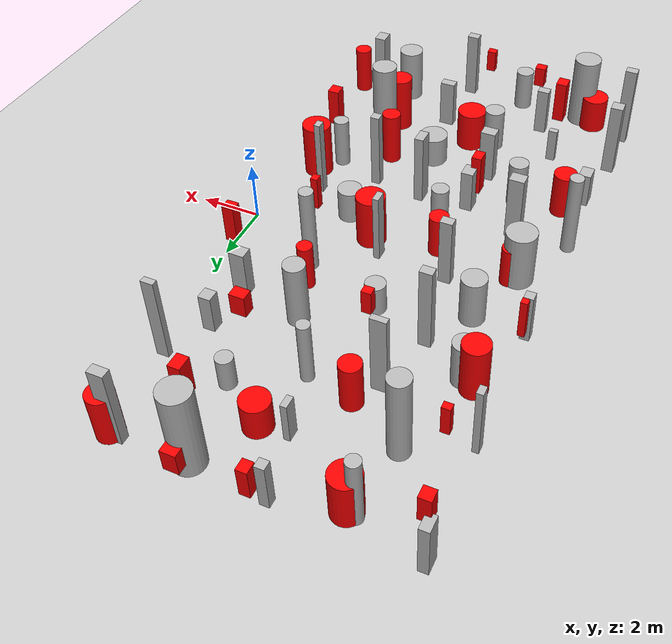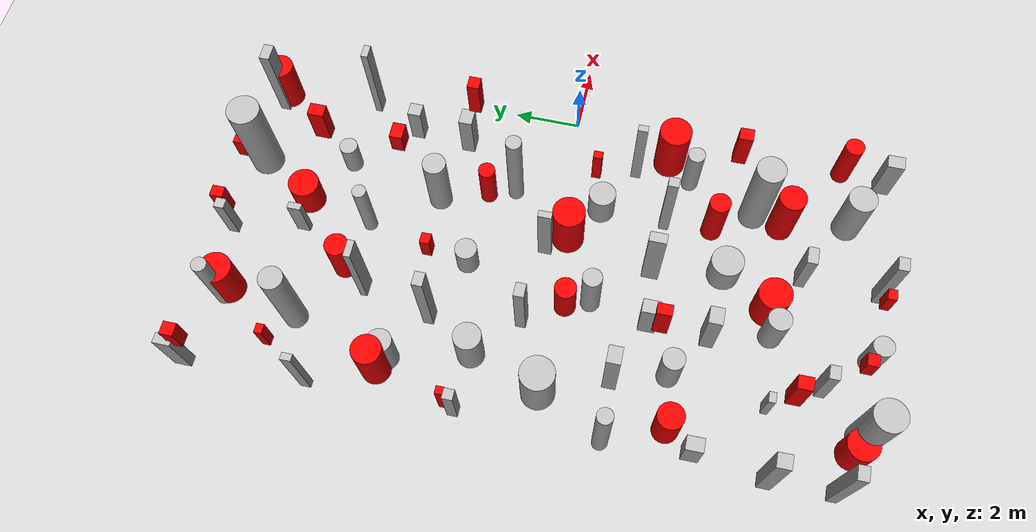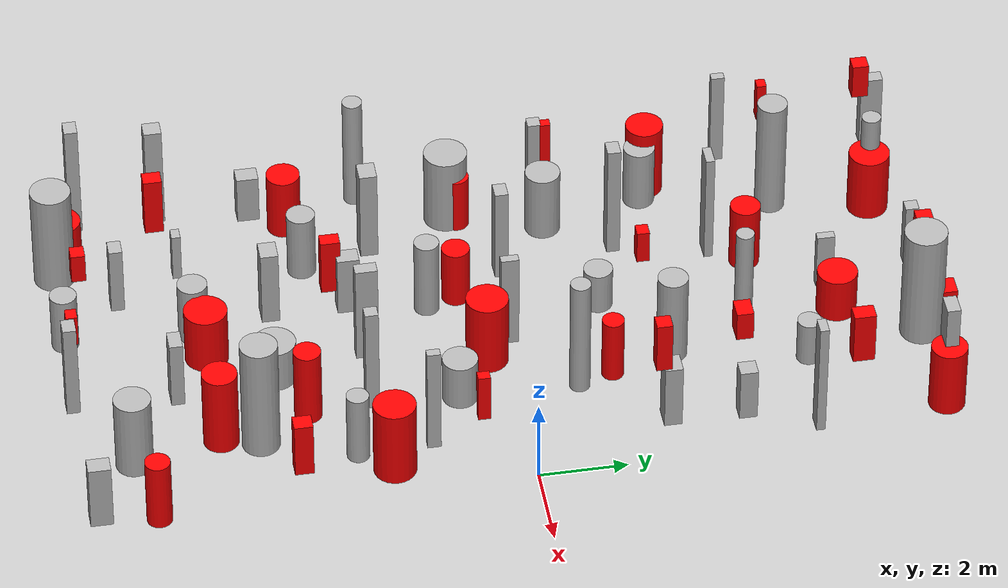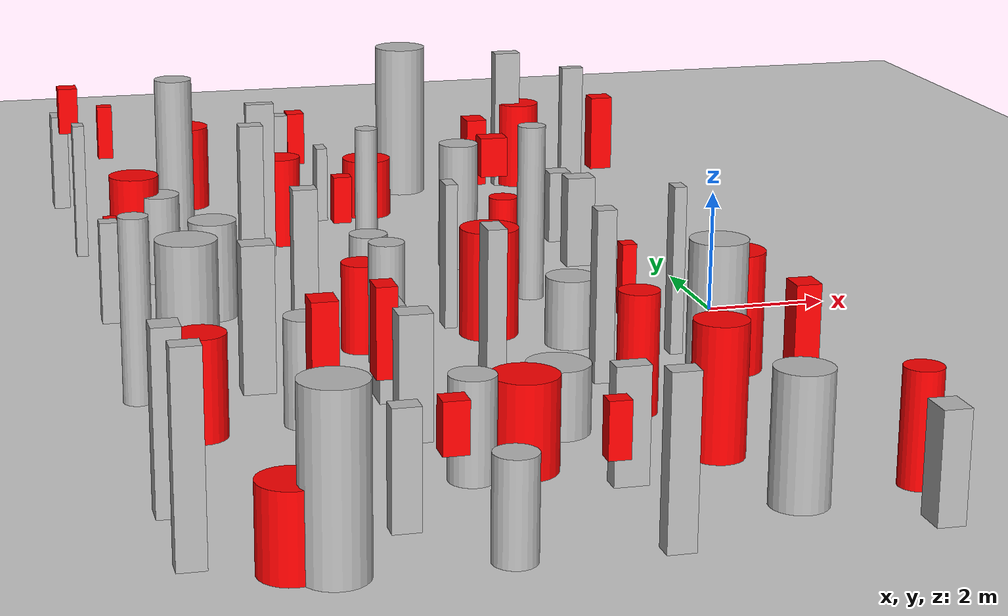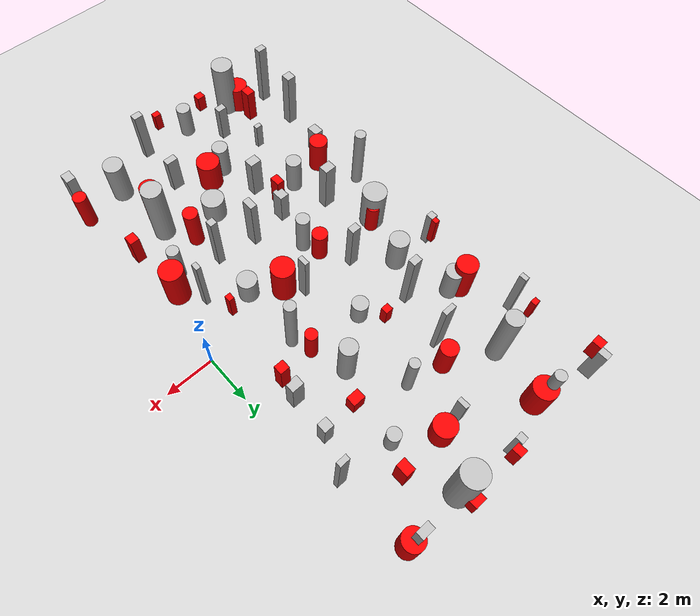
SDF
<sdf version="1.7">
 <world name="default">
  <model name="ground_plane">
   <static>1</static>
   <link name="link">
    <collision name="collision">
     <geometry><plane><normal>0 0 1</normal><size>100 100</size></plane></geometry>
     <surface>
      <contact><collide_bitmask>65535</collide_bitmask></contact>
      <friction><ode><mu>100</mu><mu2>50</mu2></ode></friction>
     </surface>
    </collision>
    <visual name="visual">
     <cast_shadows>0</cast_shadows>
     <geometry><plane><normal>0 0 1</normal><size>100 100</size></plane></geometry>
     <material>
      <script><uri>file://media/materials/scripts/gazebo.material</uri><name>Gazebo/Grey</name></script>
     </material>
    </visual>
   </link>
  </model>
  <model name="cylinder_3_0.9_0.9_2.6">
   <static>true</static>
   <pose>-8.257414005969185 -9.595632051193485 1.2781567509498504 0 0 0</pose>
   <link name="link">
    <visual name="visual">
     <geometry>
      <cylinder><radius>0.46100364447404574</radius><length>2.5563135018997007</length></cylinder>
     </geometry>
    </visual>
    <collision name="collision">
     <geometry>
      <cylinder><radius>0.46100364447404574</radius><length>2.5563135018997007</length></cylinder>
     </geometry>
     <collision><collide_bitmask>0x1</collide_bitmask><collide_with>0x2</collide_with></collision>
    </collision>
   </link>
  </model>
  <model name="cylinder_6_0.4_0.4_2.1">
   <static>true</static>
   <pose>-4.70888775790746 5.484673788684333 1.0684339488686485 0 0 0</pose>
   <link name="link">
    <visual name="visual">
     <geometry>
      <cylinder><radius>0.20563694013090655</radius><length>2.136867897737297</length></cylinder>
     </geometry>
    </visual>
   </link>
  </model>
  <model name="cylinder_8_0.8_0.8_1.1">
   <static>true</static>
   <pose>-2.80984198852428 -1.259360924013171 0.5602254716292698 0 0 0</pose>
   <link name="link">
    <visual name="visual">
     <geometry>
      <cylinder><radius>0.4000300146337003</radius><length>1.1204509432585397</length></cylinder>
     </geometry>
    </visual>
   </link>
  </model>
  <model name="cylinder_9_0.5_0.5_3.0">
   <static>true</static>
   <pose>-2.725784581147548 1.4039354083575937 1.4883738380592262 0 0 0</pose>
   <link name="link">
    <visual name="visual">
     <geometry>
      <cylinder><radius>0.23061344322440844</radius><length>2.9767476761184524</length></cylinder>
     </geometry>
    </visual>
   </link>
  </model>
  <model name="cylinder_10_0.7_0.7_1.5">
   <static>true</static>
   <pose>-5.822464878103306 -6.773809642300074 0.7532916025397821 0 0 0</pose>
   <link name="link">
    <visual name="visual">
     <geometry>
      <cylinder><radius>0.3398932318568919</radius><length>1.5065832050795642</length></cylinder>
     </geometry>
    </visual>
   </link>
  </model>
  <model name="cylinder_11_0.7_0.7_3.0">
   <static>true</static>
   <pose>-8.057974484138775 6.758898149976076 1.4764594650133958 0 0 0</pose>
   <link name="link">
    <visual name="visual">
     <geometry>
      <cylinder><radius>0.3405953604943105</radius><length>2.9529189300267915</length></cylinder>
     </geometry>
    </visual>
   </link>
  </model>
  <model name="cylinder_13_0.6_0.6_1.6">
   <static>true</static>
   <pose>-7.596068775736622 -4.077196049557101 0.817983179393976 0 0 0</pose>
   <link name="link">
    <visual name="visual">
     <geometry><cylinder><radius>0.324278898354401</radius><length>1.635966358787952</length></cylinder></geometry>
    </visual>
   </link>
  </model>
  <model name="cylinder_14_0.7_0.7_1.5">
   <static>true</static>
   <pose>-8.717050073024312 3.849442387400398 0.7653894909394454 0 0 0</pose>
   <link name="link">
    <visual name="visual">
     <geometry>
      <cylinder><radius>0.3569744160400099</radius><length>1.5307789818788908</length></cylinder>
     </geometry>
    </visual>
   </link>
  </model>
  <model name="cylinder_15_0.8_0.8_1.6">
   <static>true</static>
   <pose>-8.121189784831166 1.5189299111235854 0.8185689524513237 0 0 0</pose>
   <link name="link">
    <visual name="visual">
     <geometry>
      <cylinder><radius>0.4002231139891045</radius><length>1.6371379049026473</length></cylinder>
     </geometry>
    </visual>
   </link>
  </model>
  <model name="cylinder_22_0.8_0.8_1.9">
   <static>true</static>
   <pose>-1.8563340554800067 -8.61666009089724 0.9535426826780689 0 0 0</pose>
   <link name="link">
    <visual name="visual">
     <geometry>
      <cylinder><radius>0.4166166798411044</radius><length>1.9070853653561377</length></cylinder>
     </geometry>
    </visual>
   </link>
  </model>
  <model name="cylinder_24_0.6_0.6_1.4">
   <static>true</static>
   <pose>-6.000069502071998 -9.62956411078772 0.7239246880603801 0 0 0</pose>
   <link name="link">
    <visual name="visual">
     <geometry>
      <cylinder><radius>0.30360550420907084</radius><length>1.4478493761207603</length></cylinder>
     </geometry>
    </visual>
   </link>
  </model>
  <model name="cylinder_26_0.8_0.8_2.9">
   <static>true</static>
   <pose>-2.035578755678163 -5.803125020497557 1.4443723899839336 0 0 0</pose>
   <link name="link">
    <visual name="visual">
     <geometry>
      <cylinder><radius>0.4218652385147863</radius><length>2.888744779967867</length></cylinder>
     </geometry>
    </visual>
   </link>
  </model>
  <model name="cylinder_27_0.5_0.5_1.8">
   <static>true</static>
   <pose>-1.3116674888375854 -3.764082360117948 0.8777518392924809 0 0 0</pose>
   <link name="link">
    <visual name="visual">
     <geometry>
      <cylinder><radius>0.25388110326789043</radius><length>1.7555036785849618</length></cylinder>
     </geometry>
    </visual>
   </link>
  </model>
  <model name="cylinder_30_0.6_0.6_1.9">
   <static>true</static>
   <pose>-5.850598491177812 -1.5062906249698749 0.9635754243648107 0 0 0</pose>
   <link name="link">
    <visual name="visual">
     <geometry>
      <cylinder><radius>0.2832886118884196</radius><length>1.9271508487296214</length></cylinder>
     </geometry>
    </visual>
   </link>
  </model>
  <model name="cylinder_31_1.0_1.0_1.0">
   <static>true</static>
   <pose>-4.157049464149023 -5.183424401691063 0.5164296295914742 0 0 0</pose>
   <link name="link">
    <visual name="visual">
     <geometry>
      <cylinder><radius>0.47885879503765716</radius><length>1.0328592591829484</length></cylinder>
     </geometry>
    </visual>
   </link>
  </model>
  <model name="cylinder_32_1.0_1.0_2.9">
   <static>true</static>
   <pose>-3.236820963263087 9.231403090829971 1.4493188224156814 0 0 0</pose>
   <link name="link">
    <visual name="visual">
     <geometry>
      <cylinder><radius>0.4824133114119496</radius><length>2.898637644831363</length></cylinder>
     </geometry>
    </visual>
   </link>
  </model>
  <model name="cylinder_39_0.7_0.7_1.0">
   <static>true</static>
   <pose>-5.345117414418863 2.2892941295374865 0.5156060644468282 0 0 0</pose>
   <link name="link">
    <visual name="visual">
     <geometry>
      <cylinder><radius>0.3286387167494713</radius><length>1.0312121288936564</length></cylinder>
     </geometry>
    </visual>
   </link>
  </model>
  <model name="cylinder_40_0.5_0.5_1.1">
   <static>true</static>
   <pose>-2.789088790282155 6.573138291114756 0.5460073108872969 0 0 0</pose>
   <link name="link">
    <visual name="visual">
     <geometry>
      <cylinder><radius>0.26978809784892965</radius><length>1.0920146217745939</length></cylinder>
     </geometry>
    </visual>
   </link>
  </model>
  <model name="cylinder_41_0.4_0.4_2.4">
   <static>true</static>
   <pose>-7.881876902355356 9.01905222110788 1.1897682650777504 0 0 0</pose>
   <link name="link">
    <visual name="visual">
     <geometry>
      <cylinder><radius>0.2175069076941766</radius><length>2.3795365301555007</length></cylinder>
     </geometry>
    </visual>
   </link>
  </model>
  <model name="cylinder_44_0.5_0.5_2.8">
   <static>true</static>
   <pose>-9.842317929831193 -2.54641860358009 1.422111461767193 0 0 0</pose>
   <link name="link">
    <visual name="visual">
     <geometry>
      <cylinder><radius>0.22684836350987003</radius><length>2.844222923534386</length></cylinder>
     </geometry>
    </visual>
   </link>
  </model>
  <model name="cylinder_45_0.7_0.7_2.2">
   <static>true</static>
   <pose>-3.440239981838406 3.606973320300032 1.107249374011541 0 0 0</pose>
   <link name="link">
    <visual name="visual">
     <geometry>
      <cylinder><radius>0.3432939508629248</radius><length>2.214498748023082</length></cylinder>
     </geometry>
    </visual>
   </link>
  </model>
  <model name="cylinder_47_1.0_1.0_1.9">
   <static>true</static>
   <pose>-8.829301555288824 -0.5875819216385416 0.9570587613313674 0 0 0</pose>
   <link name="link">
    <visual name="visual">
     <geometry>
      <cylinder><radius>0.4939886979026928</radius><length>1.9141175226627347</length></cylinder>
     </geometry>
    </visual>
   </link>
  </model>
  <model name="box_1_0.3_0.2_1.2">
   <static>true</static>
   <pose>-7.951724830951672 -6.87233302264074 0.5753590690833403 0 0 0</pose>
   <link name="link">
    <visual name="visual"><geometry><box><size>0.3 0.2 1.2</size></box></geometry></visual>
   </link>
  </model>
  <model name="box_2_0.3_0.3_1.6">
   <static>true</static>
   <pose>-5.6467431308452305 9.476373936919668 0.7908409066567426 0 0 0</pose>
   <link name="link">
    <visual name="visual"><geometry><box><size>0.3 0.3 1.6</size></box></geometry></visual>
   </link>
  </model>
  <model name="box_4_0.2_0.4_2.4">
   <static>true</static>
   <pose>-4.467005395816209 0.1268583864760835 1.206410577667011 0 0 0</pose>
   <link name="link">
    <visual name="visual"><geometry><box><size>0.2 0.4 2.4</size></box></geometry></visual>
   </link>
  </model>
  <model name="box_7_0.4_0.4_2.6">
   <static>true</static>
   <pose>-9.96810858791411 -7.090997186022681 1.3051274852078378 0 0 0</pose>
   <link name="link">
    <visual name="visual"><geometry><box><size>0.4 0.4 2.6</size></box></geometry></visual>
   </link>
  </model>
  <model name="box_9_0.5_0.3_2.7">
   <static>true</static>
   <pose>-1.042438141605377 9.32442270248329 1.3264304053149787 0 0 0</pose>
   <link name="link">
    <visual name="visual"><geometry><box><size>0.5 0.3 2.7</size></box></geometry></visual>
   </link>
  </model>
  <model name="box_10_0.5_0.4_1.6">
   <static>true</static>
   <pose>-1.3480671386427048 3.1960805878154357 0.8062690951677486 0 0 0</pose>
   <link name="link">
    <visual name="visual"><geometry><box><size>0.5 0.4 1.6</size></box></geometry></visual>
   </link>
  </model>
  <model name="box_11_0.4_0.2_2.9">
   <static>true</static>
   <pose>-0.5704056656544019 6.350175977935912 1.4714355749376176 0 0 0</pose>
   <link name="link">
    <visual name="visual"><geometry><box><size>0.4 0.2 2.9</size></box></geometry></visual>
   </link>
  </model>
  <model name="box_13_0.2_0.4_1.4">
   <static>true</static>
   <pose>-5.2028403371286895 7.4259432440410045 0.6808393999158191 0 0 0</pose>
   <link name="link">
    <visual name="visual"><geometry><box><size>0.2 0.4 1.4</size></box></geometry></visual>
   </link>
  </model>
  <model name="box_14_0.5_0.2_2.8">
   <static>true</static>
   <pose>-6.743019079659223 5.038120720135398 1.3906873919138785 0 0 0</pose>
   <link name="link">
    <visual name="visual"><geometry><box><size>0.5 0.2 2.8</size></box></geometry></visual>
   </link>
  </model>
  <model name="box_15_0.4_0.3_2.4">
   <static>true</static>
   <pose>-3.9085689843607323 -9.726231780318166 1.1999887646268612 0 0 0</pose>
   <link name="link">
    <visual name="visual"><geometry><box><size>0.4 0.3 2.4</size></box></geometry></visual>
   </link>
  </model>
  <model name="box_17_0.2_0.3_2.4">
   <static>true</static>
   <pose>-9.895880412803496 5.865813050281721 1.17971569095557 0 0 0</pose>
   <link name="link">
    <visual name="visual"><geometry><box><size>0.2 0.3 2.4</size></box></geometry></visual>
   </link>
  </model>
  <model name="box_18_0.3_0.5_2.5">
   <static>true</static>
   <pose>-4.564360170334614 -3.0721112863463134 1.2664119839578025 0 0 0</pose>
   <link name="link">
    <visual name="visual"><geometry><box><size>0.3 0.5 2.5</size></box></geometry></visual>
   </link>
  </model>
  <model name="box_19_0.3_0.5_1.8">
   <static>true</static>
   <pose>-9.959761590568236 9.472539925678902 0.8991273416721923 0 0 0</pose>
   <link name="link">
    <visual name="visual"><geometry><box><size>0.3 0.5 1.8</size></box></geometry></visual>
   </link>
  </model>
  <model name="box_20_0.4_0.5_1.2">
   <static>true</static>
   <pose>-9.649393230743495 -5.019158823948033 0.6231378142588895 0 0 0</pose>
   <link name="link">
    <visual name="visual"><geometry><box><size>0.4 0.5 1.2</size></box></geometry></visual>
   </link>
  </model>
  <model name="box_21_0.5_0.3_1.7">
   <static>true</static>
   <pose>-3.8204083196700145 -7.42601433406737 0.8720705291124463 0 0 0</pose>
   <link name="link">
    <visual name="visual"><geometry><box><size>0.5 0.3 1.7</size></box></geometry></visual>
   </link>
  </model>
  <model name="box_24_0.4_0.3_2.9">
   <static>true</static>
   <pose>-9.944964788957398 -8.931717491716105 1.4606041954213376 0 0 0</pose>
   <link name="link">
    <visual name="visual"><geometry><box><size>0.4 0.3 2.9</size></box></geometry></visual>
   </link>
  </model>
  <model name="box_25_0.5_0.4_2.3">
   <static>true</static>
   <pose>-8.043336452672714 -2.5017627369362705 1.1710141986535172 0 0 0</pose>
   <link name="link">
    <visual name="visual"><geometry><box><size>0.5 0.4 2.3</size></box></geometry></visual>
   </link>
  </model>
  <model name="box_27_0.3_0.3_1.7">
   <static>true</static>
   <pose>-9.81548659659477 1.6040256090564409 0.8456759265950236 0 0 0</pose>
   <link name="link">
    <visual name="visual"><geometry><box><size>0.3 0.3 1.7</size></box></geometry></visual>
   </link>
  </model>
  <model name="box_29_0.5_0.4_1.9">
   <static>true</static>
   <pose>-6.23356783516183 -5.010171223266466 0.9426799621635172 0 0 0</pose>
   <link name="link">
    <visual name="visual"><geometry><box><size>0.5 0.4 1.9</size></box></geometry></visual>
   </link>
  </model>
  <model name="box_34_0.4_0.4_1.3">
   <static>true</static>
   <pose>-1.247919934143214 4.86622578327642 0.6558907168274684 0 0 0</pose>
   <link name="link">
    <visual name="visual"><geometry><box><size>0.4 0.4 1.3</size></box></geometry></visual>
   </link>
  </model>
  <model name="box_37_0.2_0.3_2.7">
   <static>true</static>
   <pose>-1.355811067008446 -2.0894462399592717 1.3683394874879498 0 0 0</pose>
   <link name="link">
    <visual name="visual"><geometry><box><size>0.2 0.3 2.7</size></box></geometry></visual>
   </link>
  </model>
  <model name="box_41_0.4_0.5_1.5">
   <static>true</static>
   <pose>-6.190466080296835 -3.245384968703018 0.7520502579032302 0 0 0</pose>
   <link name="link">
    <visual name="visual"><geometry><box><size>0.4 0.5 1.5</size></box></geometry></visual>
   </link>
  </model>
  <model name="box_42_0.4_0.5_1.6">
   <static>true</static>
   <pose>-0.24273102037785144 -9.561484550656079 0.7993470625613613 0 0 0</pose>
   <link name="link">
    <visual name="visual"><geometry><box><size>0.4 0.5 1.6</size></box></geometry></visual>
   </link>
  </model>
  <model name="box_43_0.4_0.3_1.7">
   <static>true</static>
   <pose>-7.107458978783933 -8.33153465129136 0.8622480430375891 0 0 0</pose>
   <link name="link">
    <visual name="visual"><geometry><box><size>0.4 0.3 1.7</size></box></geometry></visual>
   </link>
  </model>
  <model name="box_44_0.4_0.3_2.4">
   <static>true</static>
   <pose>-6.805519472667054 0.3228358296442231 1.1940169308993989 0 0 0</pose>
   <link name="link">
    <visual name="visual"><geometry><box><size>0.4 0.3 2.4</size></box></geometry></visual>
   </link>
  </model>
  <model name="box_46_0.4_0.3_2.9">
   <static>true</static>
   <pose>-7.243078954028864 2.9558203995658676 1.4282018079894847 0 0 0</pose>
   <link name="link">
    <visual name="visual"><geometry><box><size>0.4 0.3 2.9</size></box></geometry></visual>
   </link>
  </model>
  <model name="box_48_0.3_0.3_2.7">
   <static>true</static>
   <pose>-2.8941664654011445 -3.2153695479817106 1.3740450250527239 0 0 0</pose>
   <link name="link">
    <visual name="visual"><geometry><box><size>0.3 0.3 2.7</size></box></geometry></visual>
   </link>
  </model>
  <model name="dynamic_cylinder_0_0.5_0.5_1.6">
   <static>true</static>
   <pose>-2.9946536448126686 2.1934232710004764 0.7857869475825525 0 0 0</pose>
   <link name="link">
    <visual name="visual">
     <geometry>
      <cylinder><radius>0.24845360426862487</radius><length>1.571573895165105</length></cylinder>
     </geometry>
     <material><ambient>1 0 0 1</ambient><diffuse>1 0 0 1</diffuse><specular>0.5 0.5 0.5 1</specular></material>
    </visual>
   </link>
   <plugin name="obstacle_motion" filename="libobstaclePathPlugin.so">
    <orientation>false</orientation>
    <loop>0</loop>
    <velocity>0.9441818211455691</velocity>
    <path>
     <waypoint>-2.9946536448126686 2.1934232710004764 0.7857869475825525</waypoint>
     <waypoint>7.7701436804043915 3.133102733647588 0.7857869475825525</waypoint>
    </path>
   </plugin>
  </model>
  <model name="dynamic_cylinder_1_0.6_0.6_1.9">
   <static>true</static>
   <pose>-2.797294724296271 -4.646734892248996 0.9311371469944523 0 0 0</pose>
   <link name="link">
    <visual name="visual">
     <geometry>
      <cylinder><radius>0.30979703292790034</radius><length>1.8622742939889045</length></cylinder>
     </geometry>
     <material><ambient>1 0 0 1</ambient><diffuse>1 0 0 1</diffuse><specular>0.5 0.5 0.5 1</specular></material>
    </visual>
   </link>
   <plugin name="obstacle_motion" filename="libobstaclePathPlugin.so">
    <orientation>false</orientation>
    <loop>0</loop>
    <velocity>0.5596992337409327</velocity>
    <path>
     <waypoint>-2.797294724296271 -4.646734892248996 0.9311371469944523</waypoint>
     <waypoint>-9.231721088843495 7.669628419277412 0.9311371469944523</waypoint>
    </path>
   </plugin>
  </model>
  <model name="dynamic_cylinder_2_0.9_0.9_1.2">
   <static>true</static>
   <pose>-8.752672901204477 -9.359087332678333 0.6185733309827979 0 0 0</pose>
   <link name="link">
    <visual name="visual">
     <geometry>
      <cylinder><radius>0.4547195307728903</radius><length>1.2371466619655958</length></cylinder>
     </geometry>
     <material><ambient>1 0 0 1</ambient><diffuse>1 0 0 1</diffuse><specular>0.5 0.5 0.5 1</specular></material>
    </visual>
   </link>
   <plugin name="obstacle_motion" filename="libobstaclePathPlugin.so">
    <orientation>false</orientation>
    <loop>0</loop>
    <velocity>0.7189668581646967</velocity>
    <path>
     <waypoint>-8.752672901204477 -9.359087332678333 0.6185733309827979</waypoint>
     <waypoint>3.686140291273876 -4.832874192580865 0.6185733309827979</waypoint>
    </path>
   </plugin>
  </model>
  <model name="dynamic_cylinder_3_1.0_1.0_1.9">
   <static>true</static>
   <pose>-0.7442642711546288 -3.0412325565278575 0.9493577862690079 0 0 0</pose>
   <link name="link">
    <visual name="visual">
     <geometry>
      <cylinder><radius>0.47746672400213486</radius><length>1.8987155725380158</length></cylinder>
     </geometry>
     <material><ambient>1 0 0 1</ambient><diffuse>1 0 0 1</diffuse><specular>0.5 0.5 0.5 1</specular></material>
    </visual>
   </link>
   <plugin name="obstacle_motion" filename="libobstaclePathPlugin.so">
    <orientation>false</orientation>
    <loop>0</loop>
    <velocity>0.7043768180558272</velocity>
    <path>
     <waypoint>-0.7442642711546288 -3.0412325565278575 0.9493577862690079</waypoint>
     <waypoint>-6.583994029169982 -2.9642028622316214 0.9493577862690079</waypoint>
    </path>
   </plugin>
  </model>
  <model name="dynamic_cylinder_8_0.8_0.8_1.6">
   <static>true</static>
   <pose>-0.806948716413503 9.272259774025894 0.8246066625524421 0 0 0</pose>
   <link name="link">
    <visual name="visual">
     <geometry>
      <cylinder><radius>0.4075955394681937</radius><length>1.6492133251048842</length></cylinder>
     </geometry>
     <material><ambient>1 0 0 1</ambient><diffuse>1 0 0 1</diffuse><specular>0.5 0.5 0.5 1</specular></material>
    </visual>
   </link>
   <plugin name="obstacle_motion" filename="libobstaclePathPlugin.so">
    <orientation>false</orientation>
    <loop>0</loop>
    <velocity>0.6695731374930598</velocity>
    <path>
     <waypoint>-0.806948716413503 9.272259774025894 0.8246066625524421</waypoint>
     <waypoint>4.359488631030297 -8.281599608517691 0.8246066625524421</waypoint>
    </path>
   </plugin>
  </model>
  <model name="dynamic_cylinder_9_0.6_0.6_1.4">
   <static>true</static>
   <pose>-8.600344715515543 -0.3748403446893427 0.6898753794291742 0 0 0</pose>
   <link name="link">
    <visual name="visual">
     <geometry>
      <cylinder><radius>0.280210983457592</radius><length>1.3797507588583484</length></cylinder>
     </geometry>
     <material><ambient>1 0 0 1</ambient><diffuse>1 0 0 1</diffuse><specular>0.5 0.5 0.5 1</specular></material>
    </visual>
   </link>
   <plugin name="obstacle_motion" filename="libobstaclePathPlugin.so">
    <orientation>false</orientation>
    <loop>0</loop>
    <velocity>0.58518211343875</velocity>
    <path>
     <waypoint>-8.600344715515543 -0.3748403446893427 0.6898753794291742</waypoint>
     <waypoint>-2.3322796241295958 9.620871966132366 0.6898753794291742</waypoint>
    </path>
   </plugin>
  </model>
  <model name="dynamic_cylinder_10_1.0_1.0_1.8">
   <static>true</static>
   <pose>-3.937515791268204 -0.46207247195070167 0.8885212608367177 0 0 0</pose>
   <link name="link">
    <visual name="visual">
     <geometry>
      <cylinder><radius>0.4780384155585556</radius><length>1.7770425216734353</length></cylinder>
     </geometry>
     <material><ambient>1 0 0 1</ambient><diffuse>1 0 0 1</diffuse><specular>0.5 0.5 0.5 1</specular></material>
    </visual>
   </link>
   <plugin name="obstacle_motion" filename="libobstaclePathPlugin.so">
    <orientation>false</orientation>
    <loop>0</loop>
    <velocity>0.6928920416409474</velocity>
    <path>
     <waypoint>-3.937515791268204 -0.46207247195070167 0.8885212608367177</waypoint>
     <waypoint>4.000648212438945 -6.927215493583638 0.8885212608367177</waypoint>
    </path>
   </plugin>
  </model>
  <model name="dynamic_cylinder_11_1.0_1.0_1.4">
   <static>true</static>
   <pose>-5.039294308971738 -6.586045592135292 0.6941667012276227 0 0 0</pose>
   <link name="link">
    <visual name="visual">
     <geometry>
      <cylinder><radius>0.4897708753915574</radius><length>1.3883334024552454</length></cylinder>
     </geometry>
     <material><ambient>1 0 0 1</ambient><diffuse>1 0 0 1</diffuse><specular>0.5 0.5 0.5 1</specular></material>
    </visual>
   </link>
   <plugin name="obstacle_motion" filename="libobstaclePathPlugin.so">
    <orientation>false</orientation>
    <loop>0</loop>
    <velocity>0.7067186057070365</velocity>
    <path>
     <waypoint>-5.039294308971738 -6.586045592135292 0.6941667012276227</waypoint>
     <waypoint>5.431214568626173 -9.889000706318086 0.6941667012276227</waypoint>
    </path>
   </plugin>
  </model>
  <model name="dynamic_cylinder_12_0.6_0.6_1.7">
   <static>true</static>
   <pose>-0.03313739504593194 -8.307926275295603 0.8423087695764755 0 0 0</pose>
   <link name="link">
    <visual name="visual">
     <geometry>
      <cylinder><radius>0.28372923480227563</radius><length>1.684617539152951</length></cylinder>
     </geometry>
     <material><ambient>1 0 0 1</ambient><diffuse>1 0 0 1</diffuse><specular>0.5 0.5 0.5 1</specular></material>
    </visual>
   </link>
   <plugin name="obstacle_motion" filename="libobstaclePathPlugin.so">
    <orientation>false</orientation>
    <loop>0</loop>
    <velocity>0.6685466222720038</velocity>
    <path>
     <waypoint>-0.03313739504593194 -8.307926275295603 0.8423087695764755</waypoint>
     <waypoint>4.955671322190886 7.3340045475578215 0.8423087695764755</waypoint>
    </path>
   </plugin>
  </model>
  <model name="dynamic_cylinder_13_0.9_0.9_1.8">
   <static>true</static>
   <pose>-9.114254204013076 4.036940158234938 0.9223426306562905 0 0 0</pose>
   <link name="link">
    <visual name="visual">
     <geometry>
      <cylinder><radius>0.42662857455539493</radius><length>1.844685261312581</length></cylinder>
     </geometry>
     <material><ambient>1 0 0 1</ambient><diffuse>1 0 0 1</diffuse><specular>0.5 0.5 0.5 1</specular></material>
    </visual>
   </link>
   <plugin name="obstacle_motion" filename="libobstaclePathPlugin.so">
    <orientation>false</orientation>
    <loop>0</loop>
    <velocity>0.8190071357972519</velocity>
    <path>
     <waypoint>-9.114254204013076 4.036940158234938 0.9223426306562905</waypoint>
     <waypoint>-4.373615121968744 -4.191682977190656 0.9223426306562905</waypoint>
    </path>
   </plugin>
  </model>
  <model name="dynamic_cylinder_18_0.8_0.8_2.0">
   <static>true</static>
   <pose>-2.2763704601041956 -6.648038739755961 0.9920732479728819 0 0 0</pose>
   <link name="link">
    <visual name="visual">
     <geometry>
      <cylinder><radius>0.39735922664532064</radius><length>1.9841464959457638</length></cylinder>
     </geometry>
     <material><ambient>1 0 0 1</ambient><diffuse>1 0 0 1</diffuse><specular>0.5 0.5 0.5 1</specular></material>
    </visual>
   </link>
   <plugin name="obstacle_motion" filename="libobstaclePathPlugin.so">
    <orientation>false</orientation>
    <loop>0</loop>
    <velocity>0.6452513464367264</velocity>
    <path>
     <waypoint>-2.2763704601041956 -6.648038739755961 0.9920732479728819</waypoint>
     <waypoint>-2.4044790826909868 3.688379859848421 0.9920732479728819</waypoint>
    </path>
   </plugin>
  </model>
  <model name="dynamic_cylinder_21_0.9_0.9_1.6">
   <static>true</static>
   <pose>-7.599756123427657 8.938922802333181 0.7880838394894973 0 0 0</pose>
   <link name="link">
    <visual name="visual">
     <geometry>
      <cylinder><radius>0.46498855095906894</radius><length>1.5761676789789947</length></cylinder>
     </geometry>
     <material><ambient>1 0 0 1</ambient><diffuse>1 0 0 1</diffuse><specular>0.5 0.5 0.5 1</specular></material>
    </visual>
   </link>
   <plugin name="obstacle_motion" filename="libobstaclePathPlugin.so">
    <orientation>false</orientation>
    <loop>0</loop>
    <velocity>0.6115982853561949</velocity>
    <path>
     <waypoint>-7.599756123427657 8.938922802333181 0.7880838394894973</waypoint>
     <waypoint>-5.45962955535712 -0.13866804182834613 0.7880838394894973</waypoint>
    </path>
   </plugin>
  </model>
  <model name="dynamic_cylinder_22_0.6_0.6_1.4">
   <static>true</static>
   <pose>-6.108963466743756 -0.8083860053793241 0.7157791085026937 0 0 0</pose>
   <link name="link">
    <visual name="visual">
     <geometry>
      <cylinder><radius>0.31981044744143317</radius><length>1.4315582170053873</length></cylinder>
     </geometry>
     <material><ambient>1 0 0 1</ambient><diffuse>1 0 0 1</diffuse><specular>0.5 0.5 0.5 1</specular></material>
    </visual>
   </link>
   <plugin name="obstacle_motion" filename="libobstaclePathPlugin.so">
    <orientation>false</orientation>
    <loop>0</loop>
    <velocity>0.7060865998975373</velocity>
    <path>
     <waypoint>-6.108963466743756 -0.8083860053793241 0.7157791085026937</waypoint>
     <waypoint>7.618527705298391 1.8491715246373808 0.7157791085026937</waypoint>
    </path>
   </plugin>
  </model>
  <model name="dynamic_cylinder_23_0.8_0.8_1.5">
   <static>true</static>
   <pose>-9.13024537370654 -4.25105586774956 0.7732210200748559 0 0 0</pose>
   <link name="link">
    <visual name="visual">
     <geometry>
      <cylinder><radius>0.3836357947836924</radius><length>1.5464420401497119</length></cylinder>
     </geometry>
     <material><ambient>1 0 0 1</ambient><diffuse>1 0 0 1</diffuse><specular>0.5 0.5 0.5 1</specular></material>
    </visual>
   </link>
   <plugin name="obstacle_motion" filename="libobstaclePathPlugin.so">
    <orientation>false</orientation>
    <loop>0</loop>
    <velocity>0.6898432348365251</velocity>
    <path>
     <waypoint>-9.13024537370654 -4.25105586774956 0.7732210200748559</waypoint>
     <waypoint>0.08375673479962309 -6.341737393633496 0.7732210200748559</waypoint>
    </path>
   </plugin>
  </model>
  <model name="dynamic_cylinder_26_0.9_0.9_1.1">
   <static>true</static>
   <pose>-4.281928218892881 7.518459555235147 0.54878663846558 0 0 0</pose>
   <link name="link">
    <visual name="visual">
     <geometry><cylinder><radius>0.4550193282555194</radius><length>1.09757327693116</length></cylinder></geometry>
     <material><ambient>1 0 0 1</ambient><diffuse>1 0 0 1</diffuse><specular>0.5 0.5 0.5 1</specular></material>
    </visual>
   </link>
   <plugin name="obstacle_motion" filename="libobstaclePathPlugin.so">
    <orientation>false</orientation>
    <loop>0</loop>
    <velocity>0.7136428245405051</velocity>
    <path>
     <waypoint>-4.281928218892881 7.518459555235147 0.54878663846558</waypoint>
     <waypoint>6.456063380309676 7.357408076397231 0.54878663846558</waypoint>
    </path>
   </plugin>
  </model>
  <model name="dynamic_cylinder_29_0.7_0.7_1.6">
   <static>true</static>
   <pose>-6.23389393422805 5.80458916413315 0.8078738462882097 0 0 0</pose>
   <link name="link">
    <visual name="visual">
     <geometry>
      <cylinder><radius>0.34379161790694324</radius><length>1.6157476925764194</length></cylinder>
     </geometry>
     <material><ambient>1 0 0 1</ambient><diffuse>1 0 0 1</diffuse><specular>0.5 0.5 0.5 1</specular></material>
    </visual>
   </link>
   <plugin name="obstacle_motion" filename="libobstaclePathPlugin.so">
    <orientation>false</orientation>
    <loop>0</loop>
    <velocity>0.8596395898085847</velocity>
    <path>
     <waypoint>-6.23389393422805 5.80458916413315 0.8078738462882097</waypoint>
     <waypoint>3.898914775413246 -0.5848224940045625 0.8078738462882097</waypoint>
    </path>
   </plugin>
  </model>
  <model name="dynamic_box_2_0.3_0.4_1.0">
   <static>true</static>
   <pose>-5.2961770738697345 9.686709931389409 1.073283037505261 0 0 0</pose>
   <link name="link">
    <visual name="visual">
     <geometry><box><size>0.33329210905711926 0.3745277734975444 1.0135472699171528</size></box></geometry>
     <material><ambient>1 0 0 1</ambient><diffuse>1 0 0 1</diffuse><specular>0.5 0.5 0.5 1</specular></material>
    </visual>
   </link>
   <plugin name="obstacle_motion" filename="libobstaclePathPlugin.so">
    <orientation>false</orientation>
    <loop>0</loop>
    <velocity>0.9583325160033617</velocity>
    <path>
     <waypoint>-5.2961770738697345 9.686709931389409 1.073283037505261</waypoint>
     <waypoint>6.563629856170348 -6.576741011339027 2.3511813938780475</waypoint>
    </path>
   </plugin>
  </model>
  <model name="dynamic_box_3_0.3_0.2_1.0">
   <static>true</static>
   <pose>-9.330957222071813 6.758114796565714 2.030430614421514 0 0 0</pose>
   <link name="link">
    <visual name="visual">
     <geometry><box><size>0.260989571933933 0.21836125995912223 0.9587108991107639</size></box></geometry>
     <material><ambient>1 0 0 1</ambient><diffuse>1 0 0 1</diffuse><specular>0.5 0.5 0.5 1</specular></material>
    </visual>
   </link>
   <plugin name="obstacle_motion" filename="libobstaclePathPlugin.so">
    <orientation>false</orientation>
    <loop>0</loop>
    <velocity>0.8118517795598468</velocity>
    <path>
     <waypoint>-9.330957222071813 6.758114796565714 2.030430614421514</waypoint>
     <waypoint>3.3793319246861326 9.140586262792038 1.6902654389863827</waypoint>
    </path>
   </plugin>
  </model>
  <model name="dynamic_box_5_0.4_0.5_1.3">
   <static>true</static>
   <pose>-2.13298382259397 7.637516702559836 1.107118934204692 0 0 0</pose>
   <link name="link">
    <visual name="visual">
     <geometry><box><size>0.38416111266249087 0.49176716338800514 1.270198937412074</size></box></geometry>
     <material><ambient>1 0 0 1</ambient><diffuse>1 0 0 1</diffuse><specular>0.5 0.5 0.5 1</specular></material>
    </visual>
   </link>
   <plugin name="obstacle_motion" filename="libobstaclePathPlugin.so">
    <orientation>false</orientation>
    <loop>0</loop>
    <velocity>0.5213632721695889</velocity>
    <path>
     <waypoint>-2.13298382259397 7.637516702559836 1.107118934204692</waypoint>
     <waypoint>-5.643828726858306 5.64998420039873 1.3668746981545925</waypoint>
    </path>
   </plugin>
  </model>
  <model name="dynamic_box_6_0.3_0.4_1.4">
   <static>true</static>
   <pose>-6.349277368790236 -3.612185019291056 1.1978299819081597 0 0 0</pose>
   <link name="link">
    <visual name="visual">
     <geometry><box><size>0.3262726591659572 0.44043831582231735 1.4094748514956492</size></box></geometry>
     <material><ambient>1 0 0 1</ambient><diffuse>1 0 0 1</diffuse><specular>0.5 0.5 0.5 1</specular></material>
    </visual>
   </link>
   <plugin name="obstacle_motion" filename="libobstaclePathPlugin.so">
    <orientation>false</orientation>
    <loop>0</loop>
    <velocity>0.9282993695601172</velocity>
    <path>
     <waypoint>-6.349277368790236 -3.612185019291056 1.1978299819081597</waypoint>
     <waypoint>-1.355891999426948 3.4534538131573793 2.2944893632256687</waypoint>
    </path>
   </plugin>
  </model>
  <model name="dynamic_box_7_0.5_0.4_0.7">
   <static>true</static>
   <pose>-2.464910674984358 4.996080583674585 1.6269235409979816 0 0 0</pose>
   <link name="link">
    <visual name="visual">
     <geometry><box><size>0.49254132567175624 0.3824290819246837 0.7167628052572891</size></box></geometry>
     <material><ambient>1 0 0 1</ambient><diffuse>1 0 0 1</diffuse><specular>0.5 0.5 0.5 1</specular></material>
    </visual>
   </link>
   <plugin name="obstacle_motion" filename="libobstaclePathPlugin.so">
    <orientation>false</orientation>
    <loop>0</loop>
    <velocity>0.6554260282422725</velocity>
    <path>
     <waypoint>-2.464910674984358 4.996080583674585 1.6269235409979816</waypoint>
     <waypoint>4.450669148785224 -8.064212682156864 0.5550837113101732</waypoint>
    </path>
   </plugin>
  </model>
  <model name="dynamic_box_8_0.3_0.3_0.8">
   <static>true</static>
   <pose>-5.602220229872772 3.3291668562789045 1.4066066852728651 0 0 0</pose>
   <link name="link">
    <visual name="visual">
     <geometry><box><size>0.3156030030952411 0.2857937098356378 0.8116066228315584</size></box></geometry>
     <material><ambient>1 0 0 1</ambient><diffuse>1 0 0 1</diffuse><specular>0.5 0.5 0.5 1</specular></material>
    </visual>
   </link>
   <plugin name="obstacle_motion" filename="libobstaclePathPlugin.so">
    <orientation>false</orientation>
    <loop>0</loop>
    <velocity>0.574483825927533</velocity>
    <path>
     <waypoint>-5.602220229872772 3.3291668562789045 1.4066066852728651</waypoint>
     <waypoint>-1.5860541542348834 -1.975872665031254 1.9794808586411938</waypoint>
    </path>
   </plugin>
  </model>
  <model name="dynamic_box_15_0.3_0.3_0.8">
   <static>true</static>
   <pose>-4.6964738698309 -9.588322420553844 1.6423602068612468 0 0 0</pose>
   <link name="link">
    <visual name="visual">
     <geometry><box><size>0.30394127819308114 0.25570814856349255 0.780513586104624</size></box></geometry>
     <material><ambient>1 0 0 1</ambient><diffuse>1 0 0 1</diffuse><specular>0.5 0.5 0.5 1</specular></material>
    </visual>
   </link>
   <plugin name="obstacle_motion" filename="libobstaclePathPlugin.so">
    <orientation>false</orientation>
    <loop>0</loop>
    <velocity>0.5562784580253493</velocity>
    <path>
     <waypoint>-4.6964738698309 -9.588322420553844 1.6423602068612468</waypoint>
     <waypoint>3.80855544607655 0.7517058492122111 0.6682048552391602</waypoint>
    </path>
   </plugin>
  </model>
  <model name="dynamic_box_18_0.4_0.4_1.4">
   <static>true</static>
   <pose>-7.961899957655767 -7.3458339141365725 2.1575699260485823 0 0 0</pose>
   <link name="link">
    <visual name="visual">
     <geometry><box><size>0.36242837910569053 0.4182637477177036 1.4440078998664125</size></box></geometry>
     <material><ambient>1 0 0 1</ambient><diffuse>1 0 0 1</diffuse><specular>0.5 0.5 0.5 1</specular></material>
    </visual>
   </link>
   <plugin name="obstacle_motion" filename="libobstaclePathPlugin.so">
    <orientation>false</orientation>
    <loop>0</loop>
    <velocity>0.605550980705911</velocity>
    <path>
     <waypoint>-7.961899957655767 -7.3458339141365725 2.1575699260485823</waypoint>
     <waypoint>7.98161519833911 -0.6814347313669895 2.541847363111419</waypoint>
    </path>
   </plugin>
  </model>
  <model name="dynamic_box_20_0.2_0.3_1.2">
   <static>true</static>
   <pose>-1.7680918422856866 -0.9111421342217909 0.9075737312565388 0 0 0</pose>
   <link name="link">
    <visual name="visual">
     <geometry><box><size>0.2373161613055156 0.2739211489972099 1.199545750798512</size></box></geometry>
     <material><ambient>1 0 0 1</ambient><diffuse>1 0 0 1</diffuse><specular>0.5 0.5 0.5 1</specular></material>
    </visual>
   </link>
   <plugin name="obstacle_motion" filename="libobstaclePathPlugin.so">
    <orientation>false</orientation>
    <loop>0</loop>
    <velocity>0.7481958929051509</velocity>
    <path>
     <waypoint>-1.7680918422856866 -0.9111421342217909 0.9075737312565388</waypoint>
     <waypoint>-8.765765392361967 0.20468414915677258 0.8303807025615693</waypoint>
    </path>
   </plugin>
  </model>
  <model name="dynamic_box_22_0.4_0.3_0.7">
   <static>true</static>
   <pose>-6.68637978883301 -9.206782465550562 1.7076059803505896 0 0 0</pose>
   <link name="link">
    <visual name="visual">
     <geometry><box><size>0.35193377117162383 0.3215679503226164 0.7155796527819829</size></box></geometry>
     <material><ambient>1 0 0 1</ambient><diffuse>1 0 0 1</diffuse><specular>0.5 0.5 0.5 1</specular></material>
    </visual>
   </link>
   <plugin name="obstacle_motion" filename="libobstaclePathPlugin.so">
    <orientation>false</orientation>
    <loop>0</loop>
    <velocity>0.6962323921513552</velocity>
    <path>
     <waypoint>-6.68637978883301 -9.206782465550562 1.7076059803505896</waypoint>
     <waypoint>-6.992061196290749 3.9590863949734274 1.4982343258895496</waypoint>
    </path>
   </plugin>
  </model>
  <model name="dynamic_box_24_0.4_0.4_0.9">
   <static>true</static>
   <pose>-9.802644638926052 9.152231596823693 1.9635712269796937 0 0 0</pose>
   <link name="link">
    <visual name="visual">
     <geometry><box><size>0.3599688416363325 0.37086649608850786 0.8691608008882581</size></box></geometry>
     <material><ambient>1 0 0 1</ambient><diffuse>1 0 0 1</diffuse><specular>0.5 0.5 0.5 1</specular></material>
    </visual>
   </link>
   <plugin name="obstacle_motion" filename="libobstaclePathPlugin.so">
    <orientation>false</orientation>
    <loop>0</loop>
    <velocity>0.5780119073989908</velocity>
    <path>
     <waypoint>-9.802644638926052 9.152231596823693 1.9635712269796937</waypoint>
     <waypoint>4.625463746117031 -9.912948464400754 1.7181066818966744</waypoint>
    </path>
   </plugin>
  </model>
  <model name="dynamic_box_25_0.4_0.4_1.4">
   <static>true</static>
   <pose>-0.44881861615331786 -5.095211229656376 1.288521820323377 0 0 0</pose>
   <link name="link">
    <visual name="visual">
     <geometry><box><size>0.3865116752937253 0.4185853830694968 1.355980347355335</size></box></geometry>
     <material><ambient>1 0 0 1</ambient><diffuse>1 0 0 1</diffuse><specular>0.5 0.5 0.5 1</specular></material>
    </visual>
   </link>
   <plugin name="obstacle_motion" filename="libobstaclePathPlugin.so">
    <orientation>false</orientation>
    <loop>0</loop>
    <velocity>0.9797393496880995</velocity>
    <path>
     <waypoint>-0.44881861615331786 -5.095211229656376 1.288521820323377</waypoint>
     <waypoint>4.693643498794529 3.4291678076267633 1.1830130870417788</waypoint>
    </path>
   </plugin>
  </model>
  <model name="dynamic_box_27_0.4_0.3_1.3">
   <static>true</static>
   <pose>-1.0875972310569892 2.930229933934317 2.459191218638721 0 0 0</pose>
   <link name="link">
    <visual name="visual">
     <geometry><box><size>0.3679003783143384 0.3495749723520408 1.2527815168082577</size></box></geometry>
     <material><ambient>1 0 0 1</ambient><diffuse>1 0 0 1</diffuse><specular>0.5 0.5 0.5 1</specular></material>
    </visual>
   </link>
   <plugin name="obstacle_motion" filename="libobstaclePathPlugin.so">
    <orientation>false</orientation>
    <loop>0</loop>
    <velocity>0.7692682783408609</velocity>
    <path>
     <waypoint>-1.0875972310569892 2.930229933934317 2.459191218638721</waypoint>
     <waypoint>7.37079274514134 3.0503978667121583 2.3430097517799737</waypoint>
    </path>
   </plugin>
  </model>
  <model name="dynamic_box_28_0.2_0.2_1.3">
   <static>true</static>
   <pose>-9.75626336772731 1.856150388737447 1.0135045674126333 0 0 0</pose>
   <link name="link">
    <visual name="visual">
     <geometry><box><size>0.21608072642090456 0.23599293471971994 1.3418970982677196</size></box></geometry>
     <material><ambient>1 0 0 1</ambient><diffuse>1 0 0 1</diffuse><specular>0.5 0.5 0.5 1</specular></material>
    </visual>
   </link>
   <plugin name="obstacle_motion" filename="libobstaclePathPlugin.so">
    <orientation>false</orientation>
    <loop>0</loop>
    <velocity>0.8298606661569242</velocity>
    <path>
     <waypoint>-9.75626336772731 1.856150388737447 1.0135045674126333</waypoint>
     <waypoint>5.475957485132543 5.5643369878165 1.238255201243551</waypoint>
    </path>
   </plugin>
  </model>
  <model name="dynamic_box_29_0.5_0.4_0.7">
   <static>true</static>
   <pose>-3.223453382397155 9.777625322406806 0.8828729433965923 0 0 0</pose>
   <link name="link">
    <visual name="visual">
     <geometry><box><size>0.4766902537599098 0.3788375511765364 0.7398572320704714</size></box></geometry>
     <material><ambient>1 0 0 1</ambient><diffuse>1 0 0 1</diffuse><specular>0.5 0.5 0.5 1</specular></material>
    </visual>
   </link>
   <plugin name="obstacle_motion" filename="libobstaclePathPlugin.so">
    <orientation>false</orientation>
    <loop>0</loop>
    <velocity>0.7695732244700864</velocity>
    <path>
     <waypoint>-3.223453382397155 9.777625322406806 0.8828729433965923</waypoint>
     <waypoint>-3.227661513745053 4.167693196069859 2.141946247322346</waypoint>
    </path>
   </plugin>
  </model>
 </world>
</sdf>
